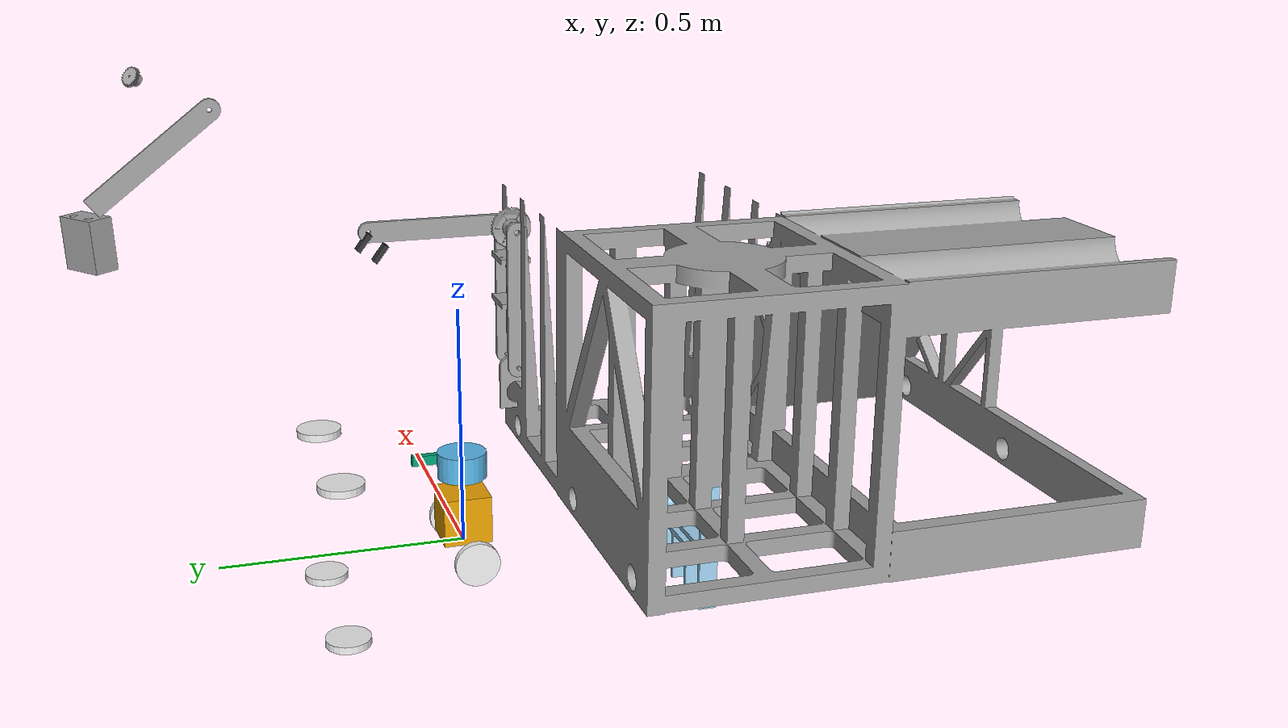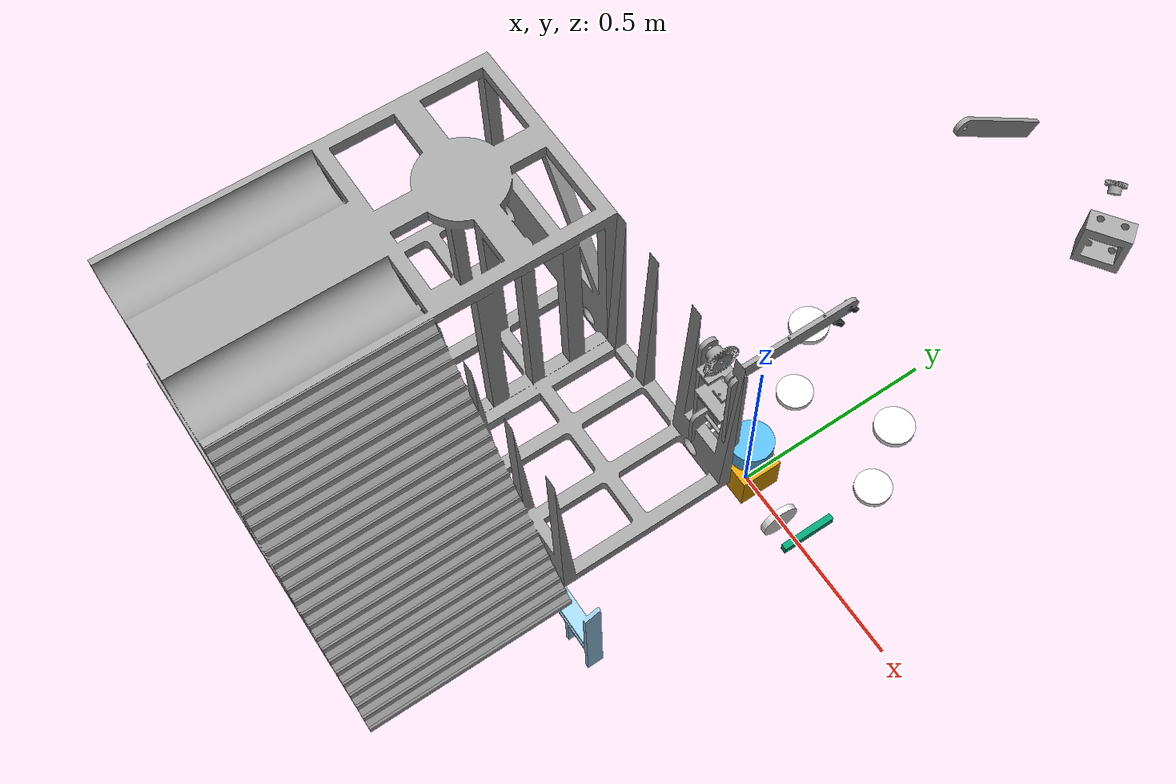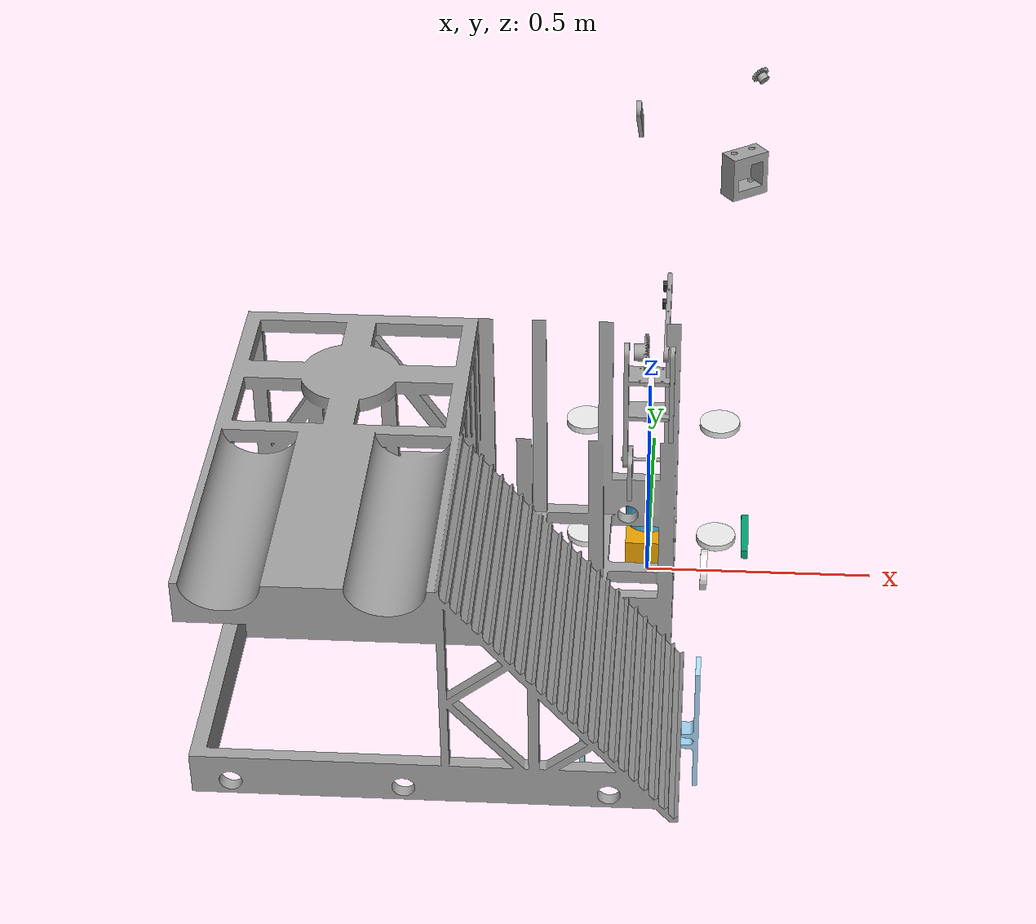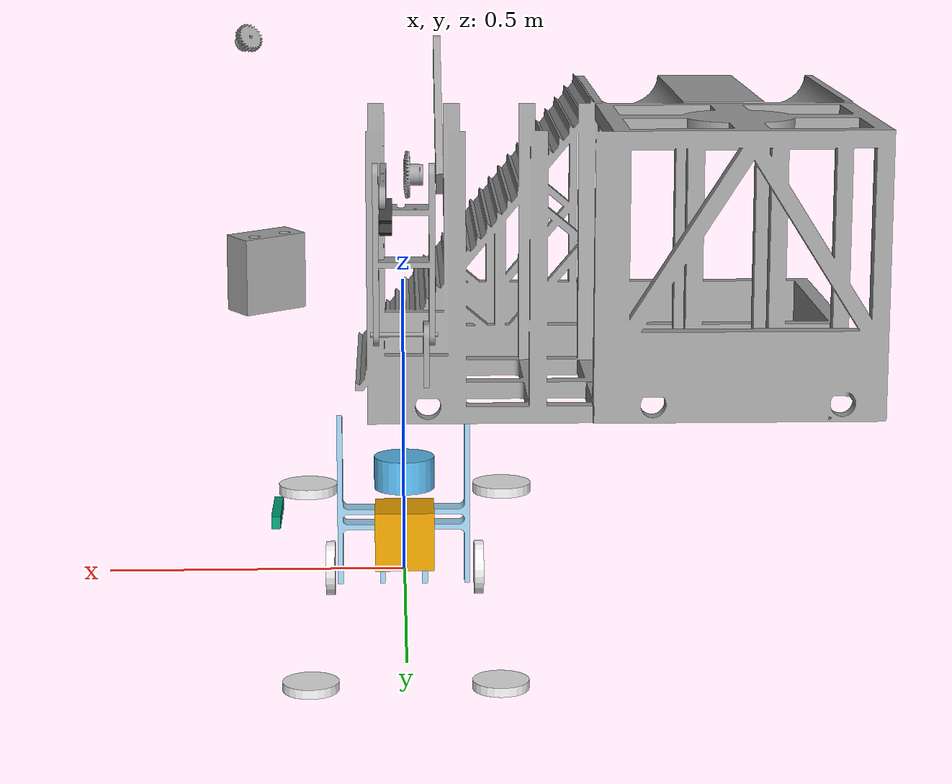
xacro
<?xml version="1.0"?>
<robot name="robot_R2" xmlns:xacro="http://ros.org/wiki/xacro">

  <!-- Include the base robot (chassis, wheels, sensors) -->
  <xacro:include filename="r2_base.xacro" />

  <!-- Include the hand/arm manipulator (reuses the SAME arm as R1) -->
  <xacro:include filename="$(find robocon_description)/models/R1/urdf/r1_arm.xacro" />

  <!-- Instantiate the base -->
  <xacro:r2_base />

  <!-- Instantiate the hand manipulator -->
  <xacro:hand_manipulator />

  <!-- Connect hand to the base via the arm mount point -->
  <joint name="hand_to_base_joint" type="fixed">
    <parent link="r2_arm_mount_point"/>
    <child link="hand_root_link"/>
    <origin xyz="0 0 0" rpy="0 0 0"/>
  </joint>

</robot>

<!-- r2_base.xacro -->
<robot xmlns:xacro="http://ros.org/wiki/xacro">

  <!-- R2 Base Macro: chassis, 6 wheels, sensors                    -->
  <!-- Converted from R2/robot.sdf (onshape-to-robot export)        -->

  <!-- Materials -->
  <material name="r2_light_blue">
    <color rgba="0.615686 0.811765 0.929412 1"/>
  </material>
  <material name="r2_grey">
    <color rgba="0.498039 0.498039 0.498039 1"/>
  </material>
  <material name="r2_wheel_white">
    <color rgba="0.917647 0.917647 0.917647 1"/>
  </material>
  <material name="r2_orange">
    <color rgba="0.972549 0.529412 0.00392157 1"/>
  </material>

  <!-- Wheel assembly macro (motor bracket + wheel, all fixed for   -->
  <!-- robot_state_publisher — Gazebo handles the actual rotation)   -->
  <xacro:macro name="r2_wheel_assembly" params="name motor_name
      motor_x motor_y motor_z motor_roll motor_pitch motor_yaw
      wheel_x wheel_y wheel_z wheel_roll wheel_pitch wheel_yaw">

    <!-- Motor bracket link (placeholder) -->
    <link name="${motor_name}">
      <inertial>
        <origin xyz="0 0 0" rpy="0 0 0"/>
        <mass value="0.019"/>
        <inertia ixx="0.0000131" ixy="0" ixz="0"
                 iyy="0.0000089" iyz="0"
                 izz="0.0000123"/>
      </inertial>
    </link>

    <!-- Motor bracket mount joint -->
    <joint name="${motor_name}_joint" type="fixed">
      <parent link="r2_chassis_link"/>
      <child link="${motor_name}"/>
      <origin xyz="${motor_x} ${motor_y} ${motor_z}"
              rpy="${motor_roll} ${motor_pitch} ${motor_yaw}"/>
    </joint>

    <!-- Wheel link -->
    <link name="${name}">
      <visual>
        <geometry>
          <cylinder radius="0.046" length="0.015"/>
        </geometry>
        <material name="r2_wheel_white"/>
      </visual>
      <collision>
        <geometry>
          <cylinder radius="0.046" length="0.015"/>
        </geometry>
      </collision>
      <inertial>
        <origin xyz="0 0 -0.0075" rpy="0 0 0"/>
        <mass value="0.468"/>
        <inertia ixx="0.00111" ixy="0" ixz="0"
                 iyy="0.00111" iyz="0"
                 izz="0.00216"/>
      </inertial>
    </link>

    <!-- Wheel joint -->
    <joint name="${name}_joint" type="continuous">
      <parent link="${motor_name}"/>
      <child link="${name}"/>
      <origin xyz="${wheel_x} ${wheel_y} ${wheel_z}"
              rpy="${wheel_roll} ${wheel_pitch} ${wheel_yaw}"/>
      <axis xyz="0 0 1"/>
    </joint>
  </xacro:macro>

  <!-- Main R2 Base Macro                                            -->
  <xacro:macro name="r2_base">

    <!-- ======== ROS Standard Roots ======== -->
    <link name="base_footprint"/>

    <joint name="base_joint" type="fixed">
      <parent link="base_footprint"/>
      <child link="base_link"/>
      <origin xyz="0 0 0.05" rpy="0 0 0"/>
    </joint>

    <link name="base_link"/>

    <joint name="r2_chassis_joint" type="fixed">
      <parent link="base_link"/>
      <child link="r2_chassis_link"/>
      <origin xyz="0 0 0" rpy="0 0 0"/>
    </joint>

    <!-- ======== R2 Chassis (root body of the CAD model) ======== -->
    <link name="r2_chassis_link">
      <visual>
        <origin xyz="-0.125035 -0.456621 -0.0422535" rpy="0 0 0"/>
        <geometry>
          <mesh filename="package://robocon_description/models/R2/assets/part_1.stl"/>
        </geometry>
        <material name="r2_light_blue"/>
      </visual>
      <collision>
        <origin xyz="-0.125035 -0.456621 -0.0422535" rpy="0 0 0"/>
        <geometry>
          <mesh filename="package://robocon_description/models/R2/assets/part_1.stl"/>
        </geometry>
      </collision>
      <inertial>
        <origin xyz="-3.29534e-05 -0.500484 -0.0918481" rpy="0 0 0"/>
        <mass value="0.697132"/>
        <inertia ixx="0.00402566" ixy="1.38241e-06" ixz="-6.61642e-07"
                 iyy="0.0100799" iyz="-1.08249e-05"
                 izz="0.00624016"/>
      </inertial>
    </link>

    <!-- Mount point for R2's arm manipulator -->
    <link name="r2_arm_mount_point"/>
    <joint name="r2_arm_mount_joint" type="fixed">
      <parent link="r2_chassis_link"/>
      <child link="r2_arm_mount_point"/>
      <!-- Pose from R2 SDF: arm is included at this offset -->
      <origin xyz="-0.00146441 -0.10814863 0.21805145" rpy="0 0 -1.5708"/>
    </joint>

    <!-- 6x Wheel Assemblies                                          -->
    <!-- R2 has: front_left, front_right, mid_left, mid_right,        -->
    <!--         back_left, back_right                                -->
    <!-- Positions derived from R2/robot.sdf Fastened joints          -->

    <!-- Back Right Wheel -->
    <xacro:r2_wheel_assembly
      name="back_right_wheel" motor_name="r2_motor_br"
      motor_x="0.153115" motor_y="0.23681" motor_z="-0.164453"
      motor_roll="1.5708" motor_pitch="0" motor_yaw="0"
      wheel_x="0" wheel_y="0" wheel_z="-0.033"
      wheel_roll="-1.5708" wheel_pitch="0" wheel_yaw="0"/>

    <!-- Back Left Wheel -->
    <xacro:r2_wheel_assembly
      name="back_left_wheel" motor_name="r2_motor_bl"
      motor_x="0.153115" motor_y="0.23681" motor_z="0.164453"
      motor_roll="-1.5708" motor_pitch="0" motor_yaw="3.14159"
      wheel_x="0" wheel_y="0" wheel_z="-0.033"
      wheel_roll="1.5708" wheel_pitch="0" wheel_yaw="3.14159"/>

    <!-- Mid Right Wheel -->
    <xacro:r2_wheel_assembly
      name="mid_right_wheel" motor_name="r2_motor_mr"
      motor_x="-0.153221" motor_y="0.23681" motor_z="-0.164453"
      motor_roll="1.5708" motor_pitch="0" motor_yaw="0"
      wheel_x="0" wheel_y="0" wheel_z="-0.033"
      wheel_roll="-1.5708" wheel_pitch="0" wheel_yaw="0"/>

    <!-- Mid Left Wheel -->
    <xacro:r2_wheel_assembly
      name="mid_left_wheel" motor_name="r2_motor_ml"
      motor_x="-0.153221" motor_y="0.23681" motor_z="0.164453"
      motor_roll="-1.5708" motor_pitch="0" motor_yaw="3.14159"
      wheel_x="0" wheel_y="0" wheel_z="-0.033"
      wheel_roll="1.5708" wheel_pitch="0" wheel_yaw="3.14159"/>

    <!-- Front Left Wheel -->
    <xacro:r2_wheel_assembly
      name="front_left_wheel" motor_name="r2_motor_fl"
      motor_x="-0.125883" motor_y="0" motor_z="-0.015"
      motor_roll="0" motor_pitch="0" motor_yaw="-1.5708"
      wheel_x="0" wheel_y="0" wheel_z="-0.033"
      wheel_roll="1.5708" wheel_pitch="0.104909" wheel_yaw="-3.14159"/>

    <!-- Front Right Wheel -->
    <xacro:r2_wheel_assembly
      name="front_right_wheel" motor_name="r2_motor_fr"
      motor_x="0.125883" motor_y="0" motor_z="-0.015"
      motor_roll="0" motor_pitch="0" motor_yaw="1.5708"
      wheel_x="0" wheel_y="0" wheel_z="-0.033"
      wheel_roll="-1.5708" wheel_pitch="0.104909" wheel_yaw="0"/>

    <!-- Sensors (matching what we added to R2's SDF)                  -->

    <!-- IMU -->
    <link name="imu_link">
      <visual>
        <geometry>
          <box size="0.1 0.1 0.1"/>
        </geometry>
      </visual>
      <collision>
        <geometry>
          <box size="0.1 0.1 0.1"/>
        </geometry>
      </collision>
      <inertial>
        <mass value="0.1"/>
        <inertia ixx="0.000166667" ixy="0" ixz="0"
                 iyy="0.000166667" iyz="0"
                 izz="0.000166667"/>
      </inertial>
    </link>
    <joint name="imu_joint" type="fixed">
      <parent link="r2_chassis_link"/>
      <child link="imu_link"/>
      <origin xyz="0.0 0.0 0.01" rpy="0 0 0"/>
    </joint>

    <!-- LIDAR -->
    <link name="lidar_link">
      <visual>
        <geometry>
          <cylinder radius="0.0508" length="0.055"/>
        </geometry>
      </visual>
      <collision>
        <geometry>
          <cylinder radius="0.0508" length="0.055"/>
        </geometry>
      </collision>
      <inertial>
        <mass value="0.125"/>
        <inertia ixx="0.000112155" ixy="0" ixz="0"
                 iyy="0.000112155" iyz="0"
                 izz="0.000161290"/>
      </inertial>
    </link>
    <joint name="lidar_joint" type="fixed">
      <parent link="r2_chassis_link"/>
      <child link="lidar_link"/>
      <origin xyz="0.0 0.0 0.12" rpy="0 0 0"/>
    </joint>

    <!-- Depth Camera -->
    <link name="camera_link">
      <visual>
        <geometry>
          <box size="0.015 0.130 0.0222"/>
        </geometry>
      </visual>
      <collision>
        <geometry>
          <box size="0.015 0.130 0.0222"/>
        </geometry>
      </collision>
      <inertial>
        <mass value="0.035"/>
        <inertia ixx="0.000002094" ixy="0" ixz="0"
                 iyy="0.000050729" iyz="0"
                 izz="0.000049948"/>
      </inertial>
    </link>
    <joint name="camera_joint" type="fixed">
      <parent link="r2_chassis_link"/>
      <child link="camera_link"/>
      <origin xyz="0.215 0 0.05" rpy="0 0 0"/>
    </joint>

  </xacro:macro>
</robot>

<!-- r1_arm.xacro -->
<robot xmlns:xacro="http://ros.org/wiki/xacro">

  <!-- Hand/Arm Manipulator Macro                                    -->
  <!-- Converted from robot/robot.sdf (onshape-to-robot export)     -->
  <!-- Kinematic chain (simplified for ROS TF):                      -->
  <!--   hand_root_link (connector)                                  -->
  <!--     └─ connector_joint (revolute, joint0)                     -->
  <!--         └─ arm_base_link                                      -->
  <!--             ├─ (fixed chain) arm_1_l, arm_1_r, base_motor_h   -->
  <!--             └─ Revolute_1 (revolute, joint1)                  -->
  <!--                 └─ arm_link_1 (joining_rod_1 + arm_2)         -->
  <!--                     └─ Revolute_2 (revolute, joint2)          -->
  <!--                         └─ arm_link_2 (gear + joining_rod_2)  -->
  <!--                             └─ arm_link_3 (arm_3_l + arm_3_r) -->
  <!--                                 ├─ Revolute_3 (revolute, j3)  -->
  <!--                                 │   └─ arm_link_4 (arm_4)     -->
  <!--                                 │       └─ end_effector        -->
  <!--                                 │           ├─ Revolute_4 (j4) -->
  <!--                                 │           ├─ Slider_1 (grip) -->
  <!--                                 │           └─ Slider_2 (grip) -->
  <!--                                 └─ motor_2_assembly (fixed)   -->

  <material name="arm_grey">
    <color rgba="0.627451 0.627451 0.627451 1"/>
  </material>
  <material name="arm_dark">
    <color rgba="0.207843 0.207843 0.207843 1"/>
  </material>

  <xacro:macro name="hand_manipulator">

    <!-- Root link of the hand (connector) — attaches to base      -->
    <link name="hand_root_link">
      <inertial>
        <origin xyz="0 0 0" rpy="0 0 0"/>
        <mass value="0.000000001"/>
        <inertia ixx="1e-9" ixy="0" ixz="0" iyy="1e-9" iyz="0" izz="1e-9"/>
      </inertial>
    </link>

    <!-- Joint 0: connector_joint — base rotation (revolute Z)     -->
    <joint name="connector_joint" type="revolute">
      <parent link="hand_root_link"/>
      <child link="arm_base_link"/>
      <origin xyz="0 0 0" rpy="0 0 0"/>
      <axis xyz="0 0 1"/>
      <limit lower="-3.14159" upper="3.14159" effort="300" velocity="100"/>
      <dynamics damping="0.0" friction="0.0"/>
    </joint>

    <!-- Arm base_link (turntable platform)                        -->
    <!-- Note: renamed to arm_base_link to avoid conflict with     -->
    <!--       the R1 chassis base_link                            -->
    <link name="arm_base_link">
      <visual>
        <origin xyz="0 0 0.03056" rpy="0 0 0"/>
        <geometry>
          <mesh filename="package://robocon_description/models/robot/assets/base_link.stl"/>
        </geometry>
        <material name="arm_grey"/>
      </visual>
      <collision>
        <origin xyz="0 0 0.03056" rpy="0 0 0"/>
        <geometry>
          <mesh filename="package://robocon_description/models/robot/assets/base_link.stl"/>
        </geometry>
      </collision>
      <inertial>
        <origin xyz="0 0 0.0183377" rpy="0 0 0"/>
        <mass value="1.12889"/>
        <inertia ixx="0.00242769" ixy="0" ixz="0"
                 iyy="0.00242769" iyz="0"
                 izz="0.00458701"/>
      </inertial>
    </link>

    <!-- Arm shoulder assembly (Mate connector 2 + arm_1_l + arm_1_r + motor holder) -->
    <!-- These are all rigidly connected, so we combine into one logical link -->
    <link name="arm_shoulder">
      <visual>
        <origin xyz="0 -0.000499997 0" rpy="3.14159 0 0"/>
        <geometry>
          <mesh filename="package://robocon_description/models/robot/assets/arm_1_l.stl"/>
        </geometry>
        <material name="arm_grey"/>
      </visual>
      <collision>
        <origin xyz="0 -0.000499997 0" rpy="3.14159 0 0"/>
        <geometry>
          <mesh filename="package://robocon_description/models/robot/assets/arm_1_l.stl"/>
        </geometry>
      </collision>
      <inertial>
        <origin xyz="0 0.038 -0.0568212" rpy="0 0 0"/>
        <mass value="0.0727815"/>
        <inertia ixx="7.28387e-05" ixy="0" ixz="0"
                 iyy="0.000106914" iyz="0"
                 izz="3.5288e-05"/>
      </inertial>
    </link>

    <!-- Fixed joint: arm_base_link → arm_shoulder (Fastened 3 in SDF) -->
    <joint name="arm_shoulder_joint" type="fixed">
      <parent link="arm_base_link"/>
      <child link="arm_shoulder"/>
      <origin xyz="0 0 0.03056" rpy="3.14159 0 0"/>
    </joint>

    <!-- Joint 1: Revolute 1 — shoulder rotation                   -->
    <link name="arm_link_1">
      <visual>
        <origin xyz="0 -0.086 -0.001" rpy="-1.5708 0 0"/>
        <geometry>
          <mesh filename="package://robocon_description/models/robot/assets/joining_rod_1.stl"/>
        </geometry>
        <material name="arm_grey"/>
      </visual>
      <collision>
        <origin xyz="0 -0.086 -0.001" rpy="-1.5708 0 0"/>
        <geometry>
          <mesh filename="package://robocon_description/models/robot/assets/joining_rod_1.stl"/>
        </geometry>
      </collision>
      <inertial>
        <origin xyz="0 0 0" rpy="0 0 0"/>
        <mass value="0.0155207"/>
        <inertia ixx="1.71672e-05" ixy="0" ixz="0"
                 iyy="1.71672e-05" iyz="0"
                 izz="1.24166e-07"/>
      </inertial>
    </link>

    <joint name="revolute_1" type="revolute">
      <parent link="arm_shoulder"/>
      <child link="arm_link_1"/>
      <origin xyz="0 0.0000333175 -0.086" rpy="-1.5708 0 0"/>
      <axis xyz="0 0 1"/>
      <limit lower="-3.14159" upper="3.14159" effort="30" velocity="100"/>
      <dynamics damping="0.0" friction="0.0"/>
    </joint>

    <!-- Arm link 2 (arm_2 / Mate connector 8)                     -->
    <!-- Fixed chain: joining_rod_1 → arm_2 (Fastened 4)           -->
    <link name="arm_link_2">
      <visual>
        <origin xyz="0.0000100492 -0.0860201 -0.000500003" rpy="-1.5708 0 0"/>
        <geometry>
          <mesh filename="package://robocon_description/models/robot/assets/arm_2.stl"/>
        </geometry>
        <material name="arm_grey"/>
      </visual>
      <collision>
        <origin xyz="0.0000100492 -0.0860201 -0.000500003" rpy="-1.5708 0 0"/>
        <geometry>
          <mesh filename="package://robocon_description/models/robot/assets/arm_2.stl"/>
        </geometry>
      </collision>
      <inertial>
        <origin xyz="-0.000288184 0.146899 0.000134941" rpy="0 0 0"/>
        <mass value="0.438917"/>
        <inertia ixx="0.00357355" ixy="5.47325e-06" ixz="2.9186e-07"
                 iyy="0.000884745" iyz="-4.10493e-06"
                 izz="0.00284251"/>
      </inertial>
    </link>

    <!-- Fastened 4: joining_rod → arm_2 (fixed) -->
    <joint name="arm_link_2_joint" type="fixed">
      <parent link="arm_link_1"/>
      <child link="arm_link_2"/>
      <!-- Pose from SDF Fastened 4 relative to joining_rod_1 -->
      <origin xyz="0 0 0" rpy="0 0 0"/>
    </joint>

    <!-- Joint 2: Revolute 2 — elbow rotation                      -->
    <link name="arm_link_2b">
      <visual>
        <origin xyz="-0.0110082 0.359488 0.00844098" rpy="1.5708 0 0.0349066"/>
        <geometry>
          <mesh filename="package://robocon_description/models/robot/assets/gear_1.stl"/>
        </geometry>
        <material name="arm_grey"/>
      </visual>
      <collision>
        <origin xyz="-0.0110082 0.359488 0.00844098" rpy="1.5708 0 0.0349066"/>
        <geometry>
          <mesh filename="package://robocon_description/models/robot/assets/gear_1.stl"/>
        </geometry>
      </collision>
      <inertial>
        <origin xyz="0 0 -0.0088763" rpy="0 0 0"/>
        <mass value="0.0606554"/>
        <inertia ixx="1.98986e-05" ixy="0" ixz="0"
                 iyy="1.98986e-05" iyz="0"
                 izz="3.15249e-05"/>
      </inertial>
    </link>

    <joint name="revolute_2" type="revolute">
      <parent link="arm_link_2"/>
      <child link="arm_link_2b"/>
      <origin xyz="-0.000107217 0.2763 0.00370711" rpy="-3.14159 0 0"/>
      <axis xyz="0 0 1"/>
      <limit lower="-3.14159" upper="3.14159" effort="30" velocity="100"/>
      <dynamics damping="0.0" friction="0.0"/>
    </joint>

    <!-- Arm link 3 (forearm: arm_3_l + arm_3_r)                   -->
    <!-- Fixed chain from gear → joining_rod_2 → arm_3             -->
    <link name="arm_link_3">
      <visual>
        <origin xyz="0.000499999 -0.363 -0.0205" rpy="-1.5708 0 0"/>
        <geometry>
          <mesh filename="package://robocon_description/models/robot/assets/arm_3_l.stl"/>
        </geometry>
        <material name="arm_grey"/>
      </visual>
      <collision>
        <origin xyz="0.000499999 -0.363 -0.0205" rpy="-1.5708 0 0"/>
        <geometry>
          <mesh filename="package://robocon_description/models/robot/assets/arm_3_l.stl"/>
        </geometry>
      </collision>
      <inertial>
        <origin xyz="-0.138485 -0.0000903 0.0380018" rpy="0 0 0"/>
        <mass value="0.157196"/>
        <inertia ixx="2.18204e-05" ixy="1.37271e-07" ixz="2.384e-08"
                 iyy="0.00122139" iyz="5.76e-10"
                 izz="0.00124058"/>
      </inertial>
    </link>

    <!-- Fixed chain: gear → joining_rod_2 → arm_3 (simplified) -->
    <joint name="arm_link_3_joint" type="fixed">
      <parent link="arm_link_2b"/>
      <child link="arm_link_3"/>
      <origin xyz="0 0 0" rpy="0 0 0"/>
    </joint>

    <!-- Joint 3: Revolute 3 — wrist rotation                      -->
    <link name="arm_link_4">
      <visual>
        <origin xyz="0 -0.086 -0.001" rpy="-1.5708 0 0"/>
        <geometry>
          <mesh filename="package://robocon_description/models/robot/assets/arm_4_l.stl"/>
        </geometry>
        <material name="arm_grey"/>
      </visual>
      <collision>
        <origin xyz="0 -0.086 -0.001" rpy="-1.5708 0 0"/>
        <geometry>
          <mesh filename="package://robocon_description/models/robot/assets/arm_4_l.stl"/>
        </geometry>
      </collision>
      <inertial>
        <origin xyz="0 0 0" rpy="0 0 0"/>
        <mass value="0.05"/>
        <inertia ixx="1e-05" ixy="0" ixz="0"
                 iyy="1e-05" iyz="0"
                 izz="1e-05"/>
      </inertial>
    </link>

    <joint name="revolute_3" type="revolute">
      <parent link="arm_link_3"/>
      <child link="arm_link_4"/>
      <origin xyz="-0.276963 -0.000525296 0.0037071" rpy="3.14159 0 -0.046463"/>
      <axis xyz="0 0 1"/>
      <limit lower="-3.14159" upper="3.14159" effort="30" velocity="100"/>
      <dynamics damping="0.0" friction="0.0"/>
    </joint>

    <!-- End effector assembly                                      -->
    <link name="end_effector_link">
      <visual>
        <origin xyz="0 0 0" rpy="0 0 0"/>
        <geometry>
          <mesh filename="package://robocon_description/models/robot/assets/end_effector_1.stl"/>
        </geometry>
        <material name="arm_grey"/>
      </visual>
      <collision>
        <origin xyz="0 0 0" rpy="0 0 0"/>
        <geometry>
          <mesh filename="package://robocon_description/models/robot/assets/end_effector_1.stl"/>
        </geometry>
      </collision>
      <inertial>
        <origin xyz="0 0 0" rpy="0 0 0"/>
        <mass value="0.05"/>
        <inertia ixx="1e-05" ixy="0" ixz="0"
                 iyy="1e-05" iyz="0"
                 izz="1e-05"/>
      </inertial>
    </link>

    <!-- Fixed chain: arm_link_4 → end_effector assembly -->
    <joint name="end_effector_joint" type="fixed">
      <parent link="arm_link_4"/>
      <child link="end_effector_link"/>
      <origin xyz="0 0 0" rpy="3.14159 0 0"/>
    </joint>

    <!-- Joint 4: Revolute 4 — end effector rotation               -->
    <link name="end_effector_tip">
      <visual>
        <origin xyz="0 0 0" rpy="0 0 0"/>
        <geometry>
          <mesh filename="package://robocon_description/models/robot/assets/end_effector_3.stl"/>
        </geometry>
        <material name="arm_grey"/>
      </visual>
      <collision>
        <origin xyz="0 0 0" rpy="0 0 0"/>
        <geometry>
          <mesh filename="package://robocon_description/models/robot/assets/end_effector_3.stl"/>
        </geometry>
      </collision>
      <inertial>
        <origin xyz="0 0 0" rpy="0 0 0"/>
        <mass value="0.03"/>
        <inertia ixx="1e-06" ixy="0" ixz="0"
                 iyy="1e-06" iyz="0"
                 izz="1e-06"/>
      </inertial>
    </link>

    <joint name="revolute_4" type="revolute">
      <parent link="end_effector_link"/>
      <child link="end_effector_tip"/>
      <origin xyz="0.00418158 0.031122 0.0297485" rpy="0 0 0.695746"/>
      <axis xyz="0 0 1"/>
      <limit lower="-3.14159" upper="3.14159" effort="30" velocity="100"/>
      <dynamics damping="0.0" friction="0.0"/>
    </joint>

    <!-- Gripper: Slider 1 (right) + Slider 2 (left, mimic)        -->

    <!-- Right gripper finger -->
    <link name="right_gripper_link">
      <visual>
        <origin xyz="0 0 0" rpy="0 0 0"/>
        <geometry>
          <box size="0.01 0.04 0.02"/>
        </geometry>
        <material name="arm_dark"/>
      </visual>
      <collision>
        <origin xyz="0 0 0" rpy="0 0 0"/>
        <geometry>
          <box size="0.01 0.04 0.02"/>
        </geometry>
      </collision>
      <inertial>
        <mass value="0.02"/>
        <inertia ixx="1e-06" ixy="0" ixz="0"
                 iyy="1e-06" iyz="0"
                 izz="1e-06"/>
      </inertial>
    </link>

    <joint name="slider_1" type="prismatic">
      <parent link="end_effector_tip"/>
      <child link="right_gripper_link"/>
      <origin xyz="0.02 0 0" rpy="0 0 0"/>
      <axis xyz="0 0 1"/>
      <limit lower="-0.01280" upper="0.15775" effort="30" velocity="100"/>
      <dynamics damping="0.0" friction="0.0"/>
    </joint>

    <!-- Left gripper finger -->
    <link name="left_gripper_link">
      <visual>
        <origin xyz="0 0 0" rpy="0 0 0"/>
        <geometry>
          <box size="0.01 0.04 0.02"/>
        </geometry>
        <material name="arm_dark"/>
      </visual>
      <collision>
        <origin xyz="0 0 0" rpy="0 0 0"/>
        <geometry>
          <box size="0.01 0.04 0.02"/>
        </geometry>
      </collision>
      <inertial>
        <mass value="0.02"/>
        <inertia ixx="1e-06" ixy="0" ixz="0"
                 iyy="1e-06" iyz="0"
                 izz="1e-06"/>
      </inertial>
    </link>

    <joint name="slider_2" type="prismatic">
      <parent link="end_effector_tip"/>
      <child link="left_gripper_link"/>
      <origin xyz="-0.02 0 0" rpy="0 0 0"/>
      <axis xyz="0 0 1"/>
      <limit lower="-0.01280" upper="0.15775" effort="30" velocity="100"/>
      <dynamics damping="0.0" friction="0.0"/>
      <mimic joint="slider_1" multiplier="1.0"/>
    </joint>

  </xacro:macro>
</robot>
